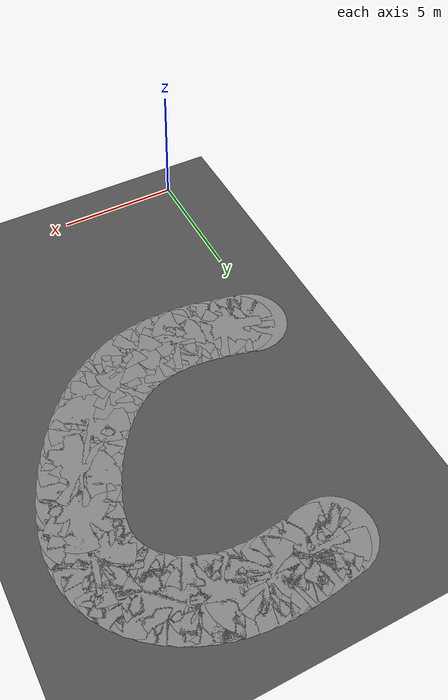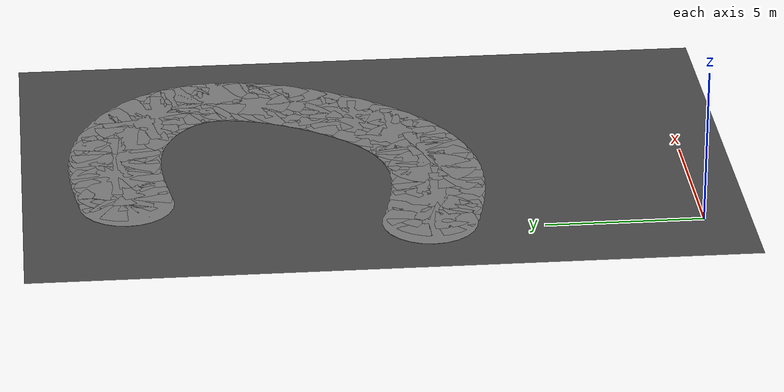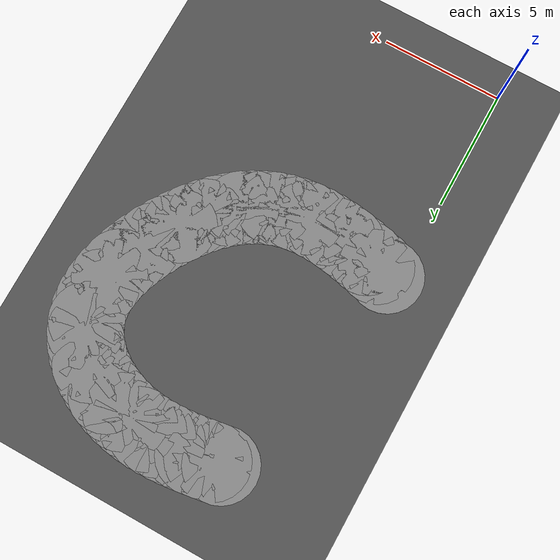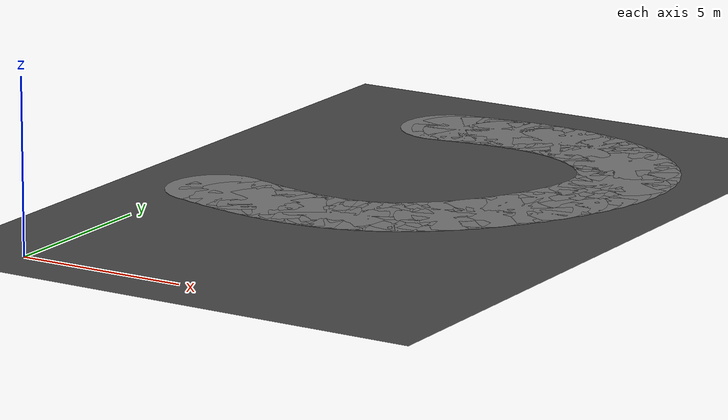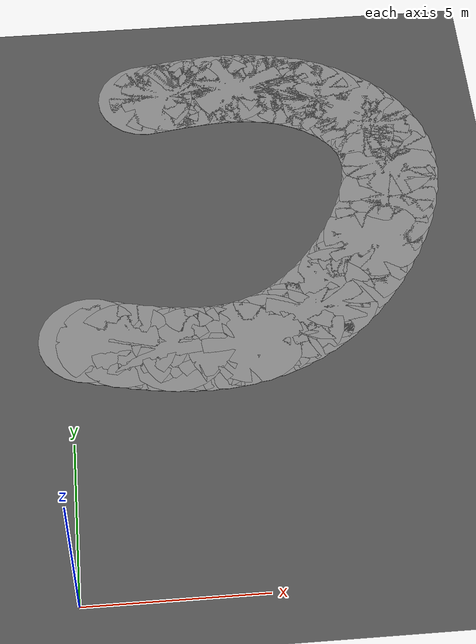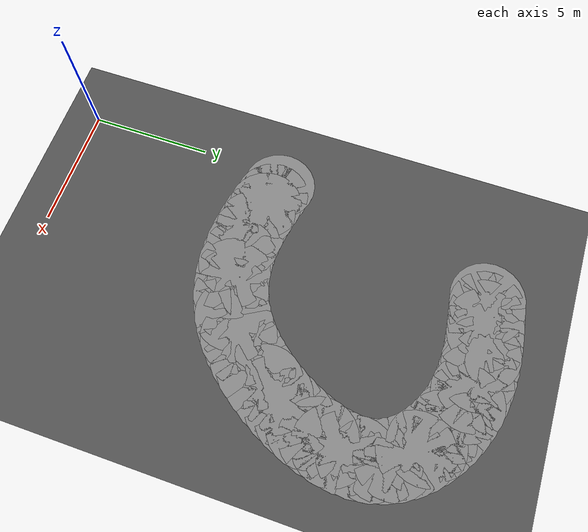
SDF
<sdf version="1.6">
 <world name="mirror_edge_world">
  <model name="ground_plane">
   <static>true</static>
   <link name="link">
    <collision name="collision">
     <geometry><plane><normal>0 0 1</normal><size>100 100</size></plane></geometry>
    </collision>
    <visual name="visual">
     <geometry><plane><normal>0 0 1</normal><size>100 100</size></plane></geometry>
     <material>
      <ambient>0.3 0.3 0.3 1</ambient>
      <diffuse>0.3 0.3 0.3 1</diffuse>
      <specular>0.5 0.5 0.5 1</specular>
      <emissive>0 0 0 1</emissive>
     </material>
    </visual>
   </link>
  </model>
  <model name="corridor_hex_497_0">
   <static>true</static>
   <link name="link">
    <pose>2.592 17.936 0.005 0 0 0</pose>
    <visual name="visual">
     <geometry><cylinder><radius>1.5</radius><length>0.01</length><segments>6</segments></cylinder></geometry>
     <material>
      <ambient>0.5 0.5 0.5 1</ambient>
      <diffuse>0.5 0.5 0.5 1</diffuse>
      <specular>0.3 0.3 0.3 1</specular>
      <emissive>0 0 0 1</emissive>
     </material>
    </visual>
   </link>
  </model>
  <model name="corridor_hex_498_0">
   <static>true</static>
   <link name="link">
    <pose>2.941 17.991 0.005 0 0 0</pose>
    <visual name="visual">
     <geometry><cylinder><radius>1.5</radius><length>0.01</length><segments>6</segments></cylinder></geometry>
     <material>
      <ambient>0.5 0.5 0.5 1</ambient>
      <diffuse>0.5 0.5 0.5 1</diffuse>
      <specular>0.3 0.3 0.3 1</specular>
      <emissive>0 0 0 1</emissive>
     </material>
    </visual>
   </link>
  </model>
  <model name="corridor_hex_499_0">
   <static>true</static>
   <link name="link">
    <pose>3.3 18.047 0.005 0 0 0</pose>
    <visual name="visual">
     <geometry><cylinder><radius>1.5</radius><length>0.01</length><segments>6</segments></cylinder></geometry>
     <material>
      <ambient>0.5 0.5 0.5 1</ambient>
      <diffuse>0.5 0.5 0.5 1</diffuse>
      <specular>0.3 0.3 0.3 1</specular>
      <emissive>0 0 0 1</emissive>
     </material>
    </visual>
   </link>
  </model>
  <model name="corridor_hex_500_0">
   <static>true</static>
   <link name="link">
    <pose>3.67 18.101 0.005 0 0 0</pose>
    <visual name="visual">
     <geometry><cylinder><radius>1.5</radius><length>0.01</length><segments>6</segments></cylinder></geometry>
     <material>
      <ambient>0.5 0.5 0.5 1</ambient>
      <diffuse>0.5 0.5 0.5 1</diffuse>
      <specular>0.3 0.3 0.3 1</specular>
      <emissive>0 0 0 1</emissive>
     </material>
    </visual>
   </link>
  </model>
  <model name="corridor_hex_501_0">
   <static>true</static>
   <link name="link">
    <pose>4.048 18.15 0.005 0 0 0</pose>
    <visual name="visual">
     <geometry><cylinder><radius>1.5</radius><length>0.01</length><segments>6</segments></cylinder></geometry>
     <material>
      <ambient>0.5 0.5 0.5 1</ambient>
      <diffuse>0.5 0.5 0.5 1</diffuse>
      <specular>0.3 0.3 0.3 1</specular>
      <emissive>0 0 0 1</emissive>
     </material>
    </visual>
   </link>
  </model>
  <model name="corridor_hex_502_0">
   <static>true</static>
   <link name="link">
    <pose>4.434 18.191 0.005 0 0 0</pose>
    <visual name="visual">
     <geometry><cylinder><radius>1.5</radius><length>0.01</length><segments>6</segments></cylinder></geometry>
     <material>
      <ambient>0.5 0.5 0.5 1</ambient>
      <diffuse>0.5 0.5 0.5 1</diffuse>
      <specular>0.3 0.3 0.3 1</specular>
      <emissive>0 0 0 1</emissive>
     </material>
    </visual>
   </link>
  </model>
  <model name="corridor_hex_503_0">
   <static>true</static>
   <link name="link">
    <pose>4.828 18.219 0.005 0 0 0</pose>
    <visual name="visual">
     <geometry><cylinder><radius>1.5</radius><length>0.01</length><segments>6</segments></cylinder></geometry>
     <material>
      <ambient>0.5 0.5 0.5 1</ambient>
      <diffuse>0.5 0.5 0.5 1</diffuse>
      <specular>0.3 0.3 0.3 1</specular>
      <emissive>0 0 0 1</emissive>
     </material>
    </visual>
   </link>
  </model>
  <model name="corridor_hex_504_0">
   <static>true</static>
   <link name="link">
    <pose>5.227 18.23 0.005 0 0 0</pose>
    <visual name="visual">
     <geometry><cylinder><radius>1.5</radius><length>0.01</length><segments>6</segments></cylinder></geometry>
     <material>
      <ambient>0.5 0.5 0.5 1</ambient>
      <diffuse>0.5 0.5 0.5 1</diffuse>
      <specular>0.3 0.3 0.3 1</specular>
      <emissive>0 0 0 1</emissive>
     </material>
    </visual>
   </link>
  </model>
  <model name="corridor_hex_505_0">
   <static>true</static>
   <link name="link">
    <pose>5.631 18.222 0.005 0 0 0</pose>
    <visual name="visual">
     <geometry><cylinder><radius>1.5</radius><length>0.01</length><segments>6</segments></cylinder></geometry>
     <material>
      <ambient>0.5 0.5 0.5 1</ambient>
      <diffuse>0.5 0.5 0.5 1</diffuse>
      <specular>0.3 0.3 0.3 1</specular>
      <emissive>0 0 0 1</emissive>
     </material>
    </visual>
   </link>
  </model>
  <model name="corridor_hex_506_0">
   <static>true</static>
   <link name="link">
    <pose>6.039 18.189 0.005 0 0 0</pose>
    <visual name="visual">
     <geometry><cylinder><radius>1.5</radius><length>0.01</length><segments>6</segments></cylinder></geometry>
     <material>
      <ambient>0.5 0.5 0.5 1</ambient>
      <diffuse>0.5 0.5 0.5 1</diffuse>
      <specular>0.3 0.3 0.3 1</specular>
      <emissive>0 0 0 1</emissive>
     </material>
    </visual>
   </link>
  </model>
  <model name="corridor_hex_507_0">
   <static>true</static>
   <link name="link">
    <pose>6.45 18.129 0.005 0 0 0</pose>
    <visual name="visual">
     <geometry><cylinder><radius>1.5</radius><length>0.01</length><segments>6</segments></cylinder></geometry>
     <material>
      <ambient>0.5 0.5 0.5 1</ambient>
      <diffuse>0.5 0.5 0.5 1</diffuse>
      <specular>0.3 0.3 0.3 1</specular>
      <emissive>0 0 0 1</emissive>
     </material>
    </visual>
   </link>
  </model>
  <model name="corridor_hex_508_0">
   <static>true</static>
   <link name="link">
    <pose>6.862 18.038 0.005 0 0 0</pose>
    <visual name="visual">
     <geometry><cylinder><radius>1.5</radius><length>0.01</length><segments>6</segments></cylinder></geometry>
     <material>
      <ambient>0.5 0.5 0.5 1</ambient>
      <diffuse>0.5 0.5 0.5 1</diffuse>
      <specular>0.3 0.3 0.3 1</specular>
      <emissive>0 0 0 1</emissive>
     </material>
    </visual>
   </link>
  </model>
  <model name="corridor_hex_509_0">
   <static>true</static>
   <link name="link">
    <pose>7.275 17.912 0.005 0 0 0</pose>
    <visual name="visual">
     <geometry><cylinder><radius>1.5</radius><length>0.01</length><segments>6</segments></cylinder></geometry>
     <material>
      <ambient>0.5 0.5 0.5 1</ambient>
      <diffuse>0.5 0.5 0.5 1</diffuse>
      <specular>0.3 0.3 0.3 1</specular>
      <emissive>0 0 0 1</emissive>
     </material>
    </visual>
   </link>
  </model>
  <model name="corridor_hex_510_0">
   <static>true</static>
   <link name="link">
    <pose>7.684 17.75 0.005 0 0 0</pose>
    <visual name="visual">
     <geometry><cylinder><radius>1.5</radius><length>0.01</length><segments>6</segments></cylinder></geometry>
     <material>
      <ambient>0.5 0.5 0.5 1</ambient>
      <diffuse>0.5 0.5 0.5 1</diffuse>
      <specular>0.3 0.3 0.3 1</specular>
      <emissive>0 0 0 1</emissive>
     </material>
    </visual>
   </link>
  </model>
  <model name="corridor_hex_511_0">
   <static>true</static>
   <link name="link">
    <pose>8.082 17.553 0.005 0 0 0</pose>
    <visual name="visual">
     <geometry><cylinder><radius>1.5</radius><length>0.01</length><segments>6</segments></cylinder></geometry>
     <material>
      <ambient>0.5 0.5 0.5 1</ambient>
      <diffuse>0.5 0.5 0.5 1</diffuse>
      <specular>0.3 0.3 0.3 1</specular>
      <emissive>0 0 0 1</emissive>
     </material>
    </visual>
   </link>
  </model>
  <model name="corridor_hex_512_0">
   <static>true</static>
   <link name="link">
    <pose>8.461 17.32 0.005 0 0 0</pose>
    <visual name="visual">
     <geometry><cylinder><radius>1.5</radius><length>0.01</length><segments>6</segments></cylinder></geometry>
     <material>
      <ambient>0.5 0.5 0.5 1</ambient>
      <diffuse>0.5 0.5 0.5 1</diffuse>
      <specular>0.3 0.3 0.3 1</specular>
      <emissive>0 0 0 1</emissive>
     </material>
    </visual>
   </link>
  </model>
  <model name="corridor_hex_513_0">
   <static>true</static>
   <link name="link">
    <pose>8.815 17.054 0.005 0 0 0</pose>
    <visual name="visual">
     <geometry><cylinder><radius>1.5</radius><length>0.01</length><segments>6</segments></cylinder></geometry>
     <material>
      <ambient>0.5 0.5 0.5 1</ambient>
      <diffuse>0.5 0.5 0.5 1</diffuse>
      <specular>0.3 0.3 0.3 1</specular>
      <emissive>0 0 0 1</emissive>
     </material>
    </visual>
   </link>
  </model>
  <model name="corridor_hex_514_0">
   <static>true</static>
   <link name="link">
    <pose>9.137 16.754 0.005 0 0 0</pose>
    <visual name="visual">
     <geometry><cylinder><radius>1.5</radius><length>0.01</length><segments>6</segments></cylinder></geometry>
     <material>
      <ambient>0.5 0.5 0.5 1</ambient>
      <diffuse>0.5 0.5 0.5 1</diffuse>
      <specular>0.3 0.3 0.3 1</specular>
      <emissive>0 0 0 1</emissive>
     </material>
    </visual>
   </link>
  </model>
  <model name="corridor_hex_515_0">
   <static>true</static>
   <link name="link">
    <pose>9.42 16.42 0.005 0 0 0</pose>
    <visual name="visual">
     <geometry><cylinder><radius>1.5</radius><length>0.01</length><segments>6</segments></cylinder></geometry>
     <material>
      <ambient>0.5 0.5 0.5 1</ambient>
      <diffuse>0.5 0.5 0.5 1</diffuse>
      <specular>0.3 0.3 0.3 1</specular>
      <emissive>0 0 0 1</emissive>
     </material>
    </visual>
   </link>
  </model>
  <model name="corridor_hex_516_0">
   <static>true</static>
   <link name="link">
    <pose>9.656 16.054 0.005 0 0 0</pose>
    <visual name="visual">
     <geometry><cylinder><radius>1.5</radius><length>0.01</length><segments>6</segments></cylinder></geometry>
     <material>
      <ambient>0.5 0.5 0.5 1</ambient>
      <diffuse>0.5 0.5 0.5 1</diffuse>
      <specular>0.3 0.3 0.3 1</specular>
      <emissive>0 0 0 1</emissive>
     </material>
    </visual>
   </link>
  </model>
  <model name="corridor_hex_517_0">
   <static>true</static>
   <link name="link">
    <pose>9.84 15.656 0.005 0 0 0</pose>
    <visual name="visual">
     <geometry><cylinder><radius>1.5</radius><length>0.01</length><segments>6</segments></cylinder></geometry>
     <material>
      <ambient>0.5 0.5 0.5 1</ambient>
      <diffuse>0.5 0.5 0.5 1</diffuse>
      <specular>0.3 0.3 0.3 1</specular>
      <emissive>0 0 0 1</emissive>
     </material>
    </visual>
   </link>
  </model>
  <model name="corridor_hex_518_0">
   <static>true</static>
   <link name="link">
    <pose>9.963 15.226 0.005 0 0 0</pose>
    <visual name="visual">
     <geometry><cylinder><radius>1.5</radius><length>0.01</length><segments>6</segments></cylinder></geometry>
     <material>
      <ambient>0.5 0.5 0.5 1</ambient>
      <diffuse>0.5 0.5 0.5 1</diffuse>
      <specular>0.3 0.3 0.3 1</specular>
      <emissive>0 0 0 1</emissive>
     </material>
    </visual>
   </link>
  </model>
  <model name="corridor_hex_519_0">
   <static>true</static>
   <link name="link">
    <pose>10.02 14.766 0.005 0 0 0</pose>
    <visual name="visual">
     <geometry><cylinder><radius>1.5</radius><length>0.01</length><segments>6</segments></cylinder></geometry>
     <material>
      <ambient>0.5 0.5 0.5 1</ambient>
      <diffuse>0.5 0.5 0.5 1</diffuse>
      <specular>0.3 0.3 0.3 1</specular>
      <emissive>0 0 0 1</emissive>
     </material>
    </visual>
   </link>
  </model>
  <model name="corridor_hex_520_0">
   <static>true</static>
   <link name="link">
    <pose>10.009 14.279 0.005 0 0 0</pose>
    <visual name="visual">
     <geometry><cylinder><radius>1.5</radius><length>0.01</length><segments>6</segments></cylinder></geometry>
     <material>
      <ambient>0.5 0.5 0.5 1</ambient>
      <diffuse>0.5 0.5 0.5 1</diffuse>
      <specular>0.3 0.3 0.3 1</specular>
      <emissive>0 0 0 1</emissive>
     </material>
    </visual>
   </link>
  </model>
  <model name="corridor_hex_521_0">
   <static>true</static>
   <link name="link">
    <pose>9.937 13.771 0.005 0 0 0</pose>
    <visual name="visual">
     <geometry><cylinder><radius>1.5</radius><length>0.01</length><segments>6</segments></cylinder></geometry>
     <material>
      <ambient>0.5 0.5 0.5 1</ambient>
      <diffuse>0.5 0.5 0.5 1</diffuse>
      <specular>0.3 0.3 0.3 1</specular>
      <emissive>0 0 0 1</emissive>
     </material>
    </visual>
   </link>
  </model>
  <model name="corridor_hex_522_0">
   <static>true</static>
   <link name="link">
    <pose>9.809 13.252 0.005 0 0 0</pose>
    <visual name="visual">
     <geometry><cylinder><radius>1.5</radius><length>0.01</length><segments>6</segments></cylinder></geometry>
     <material>
      <ambient>0.5 0.5 0.5 1</ambient>
      <diffuse>0.5 0.5 0.5 1</diffuse>
      <specular>0.3 0.3 0.3 1</specular>
      <emissive>0 0 0 1</emissive>
     </material>
    </visual>
   </link>
  </model>
  <model name="corridor_hex_523_0">
   <static>true</static>
   <link name="link">
    <pose>9.633 12.726 0.005 0 0 0</pose>
    <visual name="visual">
     <geometry><cylinder><radius>1.5</radius><length>0.01</length><segments>6</segments></cylinder></geometry>
     <material>
      <ambient>0.5 0.5 0.5 1</ambient>
      <diffuse>0.5 0.5 0.5 1</diffuse>
      <specular>0.3 0.3 0.3 1</specular>
      <emissive>0 0 0 1</emissive>
     </material>
    </visual>
   </link>
  </model>
  <model name="corridor_hex_524_0">
   <static>true</static>
   <link name="link">
    <pose>9.413 12.203 0.005 0 0 0</pose>
    <visual name="visual">
     <geometry><cylinder><radius>1.5</radius><length>0.01</length><segments>6</segments></cylinder></geometry>
     <material>
      <ambient>0.5 0.5 0.5 1</ambient>
      <diffuse>0.5 0.5 0.5 1</diffuse>
      <specular>0.3 0.3 0.3 1</specular>
      <emissive>0 0 0 1</emissive>
     </material>
    </visual>
   </link>
  </model>
  <model name="corridor_hex_525_0">
   <static>true</static>
   <link name="link">
    <pose>9.157 11.689 0.005 0 0 0</pose>
    <visual name="visual">
     <geometry><cylinder><radius>1.5</radius><length>0.01</length><segments>6</segments></cylinder></geometry>
     <material>
      <ambient>0.5 0.5 0.5 1</ambient>
      <diffuse>0.5 0.5 0.5 1</diffuse>
      <specular>0.3 0.3 0.3 1</specular>
      <emissive>0 0 0 1</emissive>
     </material>
    </visual>
   </link>
  </model>
  <model name="corridor_hex_526_0">
   <static>true</static>
   <link name="link">
    <pose>8.87 11.191 0.005 0 0 0</pose>
    <visual name="visual">
     <geometry><cylinder><radius>1.5</radius><length>0.01</length><segments>6</segments></cylinder></geometry>
     <material>
      <ambient>0.5 0.5 0.5 1</ambient>
      <diffuse>0.5 0.5 0.5 1</diffuse>
      <specular>0.3 0.3 0.3 1</specular>
      <emissive>0 0 0 1</emissive>
     </material>
    </visual>
   </link>
  </model>
  <model name="corridor_hex_527_0">
   <static>true</static>
   <link name="link">
    <pose>8.558 10.718 0.005 0 0 0</pose>
    <visual name="visual">
     <geometry><cylinder><radius>1.5</radius><length>0.01</length><segments>6</segments></cylinder></geometry>
     <material>
      <ambient>0.5 0.5 0.5 1</ambient>
      <diffuse>0.5 0.5 0.5 1</diffuse>
      <specular>0.3 0.3 0.3 1</specular>
      <emissive>0 0 0 1</emissive>
     </material>
    </visual>
   </link>
  </model>
  <model name="corridor_hex_528_0">
   <static>true</static>
   <link name="link">
    <pose>8.227 10.275 0.005 0 0 0</pose>
    <visual name="visual">
     <geometry><cylinder><radius>1.5</radius><length>0.01</length><segments>6</segments></cylinder></geometry>
     <material>
      <ambient>0.5 0.5 0.5 1</ambient>
      <diffuse>0.5 0.5 0.5 1</diffuse>
      <specular>0.3 0.3 0.3 1</specular>
      <emissive>0 0 0 1</emissive>
     </material>
    </visual>
   </link>
  </model>
  <model name="corridor_hex_529_0">
   <static>true</static>
   <link name="link">
    <pose>7.885 9.87 0.005 0 0 0</pose>
    <visual name="visual">
     <geometry><cylinder><radius>1.5</radius><length>0.01</length><segments>6</segments></cylinder></geometry>
     <material>
      <ambient>0.5 0.5 0.5 1</ambient>
      <diffuse>0.5 0.5 0.5 1</diffuse>
      <specular>0.3 0.3 0.3 1</specular>
      <emissive>0 0 0 1</emissive>
     </material>
    </visual>
   </link>
  </model>
  <model name="corridor_hex_530_0">
   <static>true</static>
   <link name="link">
    <pose>7.533 9.507 0.005 0 0 0</pose>
    <visual name="visual">
     <geometry><cylinder><radius>1.5</radius><length>0.01</length><segments>6</segments></cylinder></geometry>
     <material>
      <ambient>0.5 0.5 0.5 1</ambient>
      <diffuse>0.5 0.5 0.5 1</diffuse>
      <specular>0.3 0.3 0.3 1</specular>
      <emissive>0 0 0 1</emissive>
     </material>
    </visual>
   </link>
  </model>
  <model name="corridor_hex_531_0">
   <static>true</static>
   <link name="link">
    <pose>7.173 9.186 0.005 0 0 0</pose>
    <visual name="visual">
     <geometry><cylinder><radius>1.5</radius><length>0.01</length><segments>6</segments></cylinder></geometry>
     <material>
      <ambient>0.5 0.5 0.5 1</ambient>
      <diffuse>0.5 0.5 0.5 1</diffuse>
      <specular>0.3 0.3 0.3 1</specular>
      <emissive>0 0 0 1</emissive>
     </material>
    </visual>
   </link>
  </model>
  <model name="corridor_hex_532_0">
   <static>true</static>
   <link name="link">
    <pose>6.804 8.906 0.005 0 0 0</pose>
    <visual name="visual">
     <geometry><cylinder><radius>1.5</radius><length>0.01</length><segments>6</segments></cylinder></geometry>
     <material>
      <ambient>0.5 0.5 0.5 1</ambient>
      <diffuse>0.5 0.5 0.5 1</diffuse>
      <specular>0.3 0.3 0.3 1</specular>
      <emissive>0 0 0 1</emissive>
     </material>
    </visual>
   </link>
  </model>
  <model name="corridor_hex_533_0">
   <static>true</static>
   <link name="link">
    <pose>6.425 8.665 0.005 0 0 0</pose>
    <visual name="visual">
     <geometry><cylinder><radius>1.5</radius><length>0.01</length><segments>6</segments></cylinder></geometry>
     <material>
      <ambient>0.5 0.5 0.5 1</ambient>
      <diffuse>0.5 0.5 0.5 1</diffuse>
      <specular>0.3 0.3 0.3 1</specular>
      <emissive>0 0 0 1</emissive>
     </material>
    </visual>
   </link>
  </model>
  <model name="corridor_hex_534_0">
   <static>true</static>
   <link name="link">
    <pose>6.036 8.463 0.005 0 0 0</pose>
    <visual name="visual">
     <geometry><cylinder><radius>1.5</radius><length>0.01</length><segments>6</segments></cylinder></geometry>
     <material>
      <ambient>0.5 0.5 0.5 1</ambient>
      <diffuse>0.5 0.5 0.5 1</diffuse>
      <specular>0.3 0.3 0.3 1</specular>
      <emissive>0 0 0 1</emissive>
     </material>
    </visual>
   </link>
  </model>
  <model name="corridor_hex_535_0">
   <static>true</static>
   <link name="link">
    <pose>5.636 8.299 0.005 0 0 0</pose>
    <visual name="visual">
     <geometry><cylinder><radius>1.5</radius><length>0.01</length><segments>6</segments></cylinder></geometry>
     <material>
      <ambient>0.5 0.5 0.5 1</ambient>
      <diffuse>0.5 0.5 0.5 1</diffuse>
      <specular>0.3 0.3 0.3 1</specular>
      <emissive>0 0 0 1</emissive>
     </material>
    </visual>
   </link>
  </model>
  <model name="corridor_hex_536_0">
   <static>true</static>
   <link name="link">
    <pose>5.226 8.171 0.005 0 0 0</pose>
    <visual name="visual">
     <geometry><cylinder><radius>1.5</radius><length>0.01</length><segments>6</segments></cylinder></geometry>
     <material>
      <ambient>0.5 0.5 0.5 1</ambient>
      <diffuse>0.5 0.5 0.5 1</diffuse>
      <specular>0.3 0.3 0.3 1</specular>
      <emissive>0 0 0 1</emissive>
     </material>
    </visual>
   </link>
  </model>
  <model name="corridor_hex_537_0">
   <static>true</static>
   <link name="link">
    <pose>4.804 8.079 0.005 0 0 0</pose>
    <visual name="visual">
     <geometry><cylinder><radius>1.5</radius><length>0.01</length><segments>6</segments></cylinder></geometry>
     <material>
      <ambient>0.5 0.5 0.5 1</ambient>
      <diffuse>0.5 0.5 0.5 1</diffuse>
      <specular>0.3 0.3 0.3 1</specular>
      <emissive>0 0 0 1</emissive>
     </material>
    </visual>
   </link>
  </model>
  <model name="corridor_hex_538_0">
   <static>true</static>
   <link name="link">
    <pose>4.37 8.022 0.005 0 0 0</pose>
    <visual name="visual">
     <geometry><cylinder><radius>1.5</radius><length>0.01</length><segments>6</segments></cylinder></geometry>
     <material>
      <ambient>0.5 0.5 0.5 1</ambient>
      <diffuse>0.5 0.5 0.5 1</diffuse>
      <specular>0.3 0.3 0.3 1</specular>
      <emissive>0 0 0 1</emissive>
     </material>
    </visual>
   </link>
  </model>
  <model name="corridor_hex_539_0">
   <static>true</static>
   <link name="link">
    <pose>3.925 7.998 0.005 0 0 0</pose>
    <visual name="visual">
     <geometry><cylinder><radius>1.5</radius><length>0.01</length><segments>6</segments></cylinder></geometry>
     <material>
      <ambient>0.5 0.5 0.5 1</ambient>
      <diffuse>0.5 0.5 0.5 1</diffuse>
      <specular>0.3 0.3 0.3 1</specular>
      <emissive>0 0 0 1</emissive>
     </material>
    </visual>
   </link>
  </model>
  <model name="corridor_hex_540_0">
   <static>true</static>
   <link name="link">
    <pose>3.467 8.007 0.005 0 0 0</pose>
    <visual name="visual">
     <geometry><cylinder><radius>1.5</radius><length>0.01</length><segments>6</segments></cylinder></geometry>
     <material>
      <ambient>0.5 0.5 0.5 1</ambient>
      <diffuse>0.5 0.5 0.5 1</diffuse>
      <specular>0.3 0.3 0.3 1</specular>
      <emissive>0 0 0 1</emissive>
     </material>
    </visual>
   </link>
  </model>
  <model name="corridor_hex_541_0">
   <static>true</static>
   <link name="link">
    <pose>2.999 8.044 0.005 0 0 0</pose>
    <visual name="visual">
     <geometry><cylinder><radius>1.5</radius><length>0.01</length><segments>6</segments></cylinder></geometry>
     <material>
      <ambient>0.5 0.5 0.5 1</ambient>
      <diffuse>0.5 0.5 0.5 1</diffuse>
      <specular>0.3 0.3 0.3 1</specular>
      <emissive>0 0 0 1</emissive>
     </material>
    </visual>
   </link>
  </model>
  <model name="corridor_hex_542_0">
   <static>true</static>
   <link name="link">
    <pose>2.52 8.107 0.005 0 0 0</pose>
    <visual name="visual">
     <geometry><cylinder><radius>1.5</radius><length>0.01</length><segments>6</segments></cylinder></geometry>
     <material>
      <ambient>0.5 0.5 0.5 1</ambient>
      <diffuse>0.5 0.5 0.5 1</diffuse>
      <specular>0.3 0.3 0.3 1</specular>
      <emissive>0 0 0 1</emissive>
     </material>
    </visual>
   </link>
  </model>
  <model name="corridor_hex_543_0">
   <static>true</static>
   <link name="link">
    <pose>2.033 8.193 0.005 0 0 0</pose>
    <visual name="visual">
     <geometry><cylinder><radius>1.5</radius><length>0.01</length><segments>6</segments></cylinder></geometry>
     <material>
      <ambient>0.5 0.5 0.5 1</ambient>
      <diffuse>0.5 0.5 0.5 1</diffuse>
      <specular>0.3 0.3 0.3 1</specular>
      <emissive>0 0 0 1</emissive>
     </material>
    </visual>
   </link>
  </model>
  <model name="corridor_hex_544_0">
   <static>true</static>
   <link name="link">
    <pose>1.539 8.298 0.005 0 0 0</pose>
    <visual name="visual">
     <geometry><cylinder><radius>1.5</radius><length>0.01</length><segments>6</segments></cylinder></geometry>
     <material>
      <ambient>0.5 0.5 0.5 1</ambient>
      <diffuse>0.5 0.5 0.5 1</diffuse>
      <specular>0.3 0.3 0.3 1</specular>
      <emissive>0 0 0 1</emissive>
     </material>
    </visual>
   </link>
  </model>
  <model name="corridor_hex_545_0">
   <static>true</static>
   <link name="link">
    <pose>1.039 8.419 0.005 0 0 0</pose>
    <visual name="visual">
     <geometry><cylinder><radius>1.5</radius><length>0.01</length><segments>6</segments></cylinder></geometry>
     <material>
      <ambient>0.5 0.5 0.5 1</ambient>
      <diffuse>0.5 0.5 0.5 1</diffuse>
      <specular>0.3 0.3 0.3 1</specular>
      <emissive>0 0 0 1</emissive>
     </material>
    </visual>
   </link>
  </model>
  <model name="corridor_hex_546_0">
   <static>true</static>
   <link name="link">
    <pose>0.533 8.553 0.005 0 0 0</pose>
    <visual name="visual">
     <geometry><cylinder><radius>1.5</radius><length>0.01</length><segments>6</segments></cylinder></geometry>
     <material>
      <ambient>0.5 0.5 0.5 1</ambient>
      <diffuse>0.5 0.5 0.5 1</diffuse>
      <specular>0.3 0.3 0.3 1</specular>
      <emissive>0 0 0 1</emissive>
     </material>
    </visual>
   </link>
  </model>
 </world>
</sdf>
